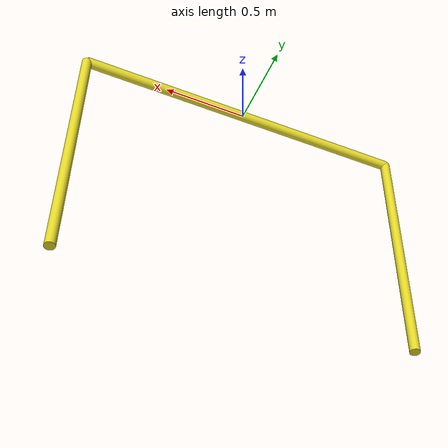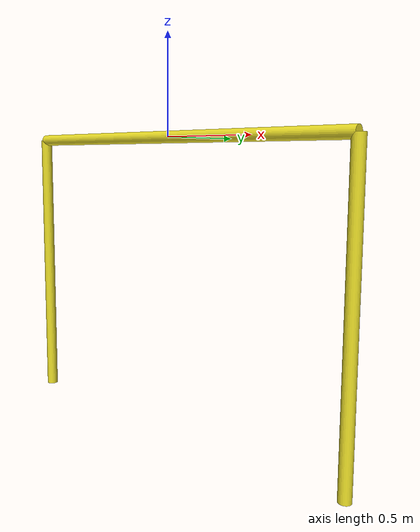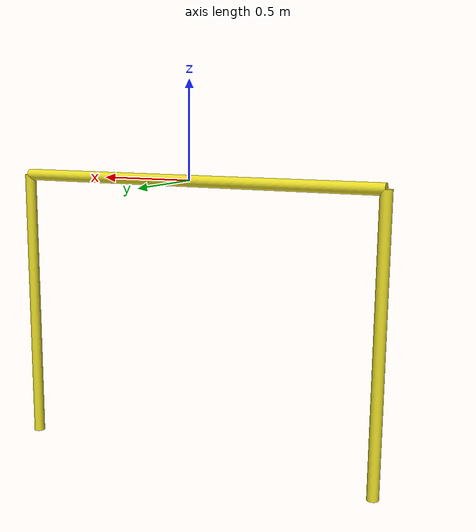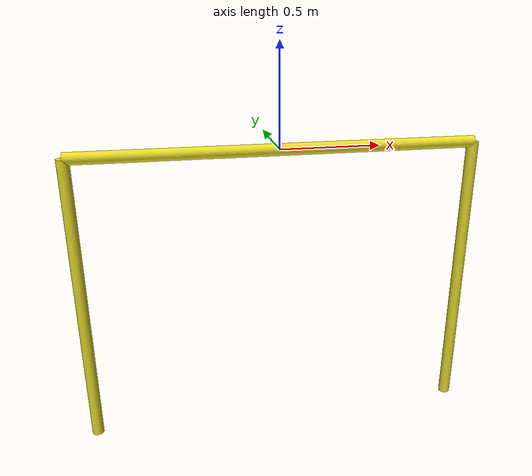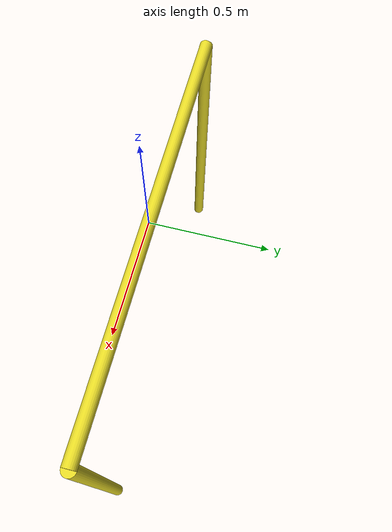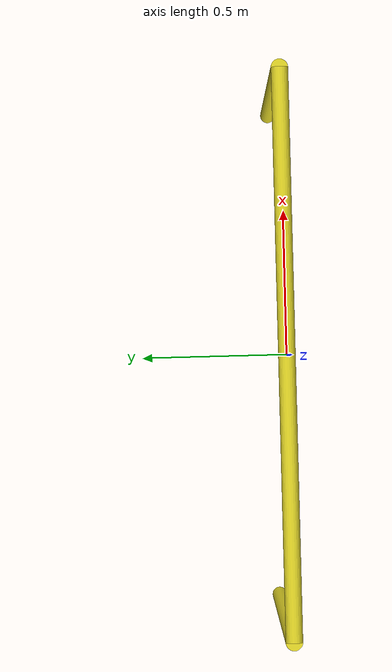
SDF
<?xml version='1.0'?>
<sdf version='1.5'>
<!--
     Written by Kristoffer Rakstad Solberg, Student
     Copyright (c) 2019 Manta AUV, Vortex NTNU.
     All rights reserved.
-->
  <model name='start_gate'>
    <pose> 0 0 0 0 0 0</pose>
    <self_collide> 0 </self_collide>
    <static>1</static>

    <link name='gate_top'>
      <pose> 0 0 0 0 1.5707 0</pose>
      <visual name='gate_top_vis'>
        <geometry>
          <cylinder>
            <radius>0.0300</radius>
            <length>2.0</length>
          </cylinder>
        </geometry>
        <material>
          <script>
            <uri>file://media/materials/scripts/gazebo.material</uri>
            <name>Gazebo/YellowGlow</name>
          </script>
        </material>
      </visual>
      <collision name='gate_top_collide'>
        <geometry>
          <cylinder>
            <radius>0.0300</radius>
            <length>2.0</length>
          </cylinder>
        </geometry>
      </collision>
    </link>

    <link name='gate_left'>
      <pose>-1.0 0 -0.75 0 0 0</pose>
      <visual name='gate_left_top'>
        <geometry>
          <cylinder>
            <radius>0.0300</radius>
            <length>1.5</length>
          </cylinder>
        </geometry>
        <material>
          <script>
            <uri>file://media/materials/scripts/gazebo.material</uri>
            <name>Gazebo/YellowGlow</name>
          </script>
        </material>
      </visual>
      <collision name='gate_left_collide'>
        <geometry>
          <cylinder>
            <radius>0.0300</radius>
            <length>1.5</length>
          </cylinder>
        </geometry>
      </collision>
    </link>

    <link name='gate_right'>
      <pose>1.0 0 -0.75 0 0 0</pose>
      <visual name='gate_right_top'>
        <geometry>
          <cylinder>
            <radius>0.0300</radius>
            <length>1.5</length>
          </cylinder>
        </geometry>
        <material>
          <script>
            <uri>file://media/materials/scripts/gazebo.material</uri>
            <name>Gazebo/YellowGlow</name>
          </script>
        </material>
      </visual>
      <collision name='gate_right_collide'>
        <geometry>
          <cylinder>
            <radius>0.0300</radius>
            <length>1.5</length>
          </cylinder>
        </geometry>
      </collision>
    </link>

  </model>
</sdf>
